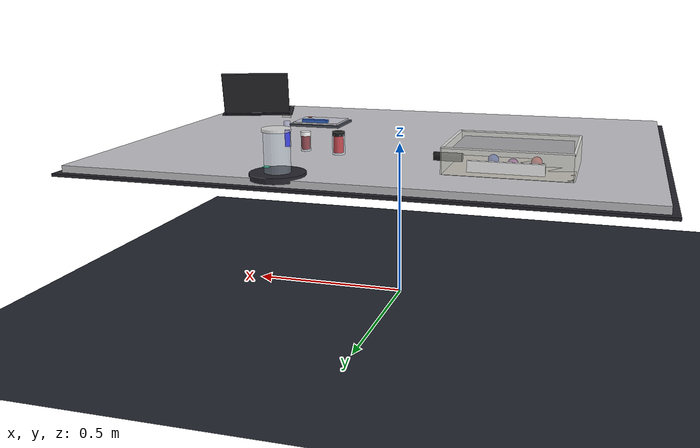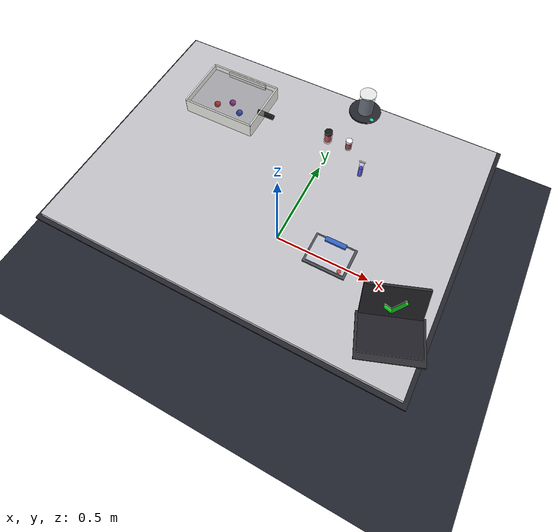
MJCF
<mujoco model="empty_scene">
    <compiler angle="radian" meshdir="assets" autolimits="true"/>
    <option timestep="0.001" gravity="0 0 -9.81" integrator="implicitfast"
            viscosity="0.1" iterations="80" ls_iterations="40" cone="pyramidal" density="1000"/>

    <visual>
        <quality shadowsize="4096"/>
        <headlight diffuse="0.7 0.7 0.7" ambient="0.25 0.25 0.25"/>
        <global azimuth="135" elevation="-25"/>
    </visual>

    <asset>
        <texture type="skybox" builtin="gradient" rgb1="0.25 0.35 0.6" rgb2="0 0 0.05" width="800" height="800"/>
        <texture type="2d" name="lab_floor_tex" builtin="checker" mark="edge"
                 rgb1="0.16 0.18 0.22" rgb2="0.10 0.11 0.14" markrgb="0.55 0.55 0.55" width="512" height="512"/>
        <texture type="2d" name="table_tex" builtin="flat" rgb1="0.78 0.78 0.8" width="256" height="256"/>
        <texture type="2d" name="matte_plastic" builtin="flat" rgb1="0.55 0.55 0.58" width="256" height="256"/>
        <!-- Screen result textures (generated at runtime if missing) -->

        <!-- Mesh for laptop screen (front face has UVs so the texture maps correctly) -->

        <material name="lab_floor" texture="lab_floor_tex" texrepeat="6 6" texuniform="true" reflectance="0.25"/>
        <material name="table_top_mat" texture="table_tex" shininess="0.35" reflectance="0.15"/>
        <material name="trim_dark" rgba="0.15 0.15 0.18 1" shininess="0.05"/>
        <material name="glass_mat" rgba="0.85 0.93 1 0.35" shininess="1.0" reflectance="0.4"/>
        <material name="bag_mat" rgba="0.94 0.94 0.9 0.65" shininess="0.15"/>
        <material name="metal_mat" rgba="0.55 0.55 0.58 1" shininess="0.9" reflectance="0.35"/>
        <material name="holder_mat" texture="matte_plastic" shininess="0.25" reflectance="0.1"/>
        <material name="screen_glow" rgba="0.2 0.4 0.8 0.9" emission="0.6" shininess="0.3"/>

        <!-- Material used for the geometry checkmark (bright, emissive green) -->
        <material name="check_mat" rgba="0.08 0.85 0.12 1" emission="2.0" shininess="0.2"/>
        <material name="laptop_shell" rgba="0.18 0.18 0.2 1" shininess="0.6"/>
        <material name="label_mat" rgba="1 1 1 0.95"/>
    </asset>

    <worldbody>
        <light name="key_light" pos="0.5 -0.5 2" dir="-0.2 0.2 -1" directional="true" castshadow="true" cutoff="60"/>
        <light name="fill_light" pos="-0.4 0.4 2.2" dir="0.2 -0.2 -1" directional="true" diffuse="0.4 0.4 0.5" specular="0.2 0.2 0.3"/>
        <geom name="lab_floor" type="plane" size="0 0 0.1" material="lab_floor" friction="1 0.1 0.01"/>
        <camera name="overview" mode="fixed" pos="1.2 -1.4 1.35" euler="0.4 0 0.8" fovy="50"/>

        <!-- Table and recessed bag slot -->
        <body name="table_top" pos="0 0 0.5">
            <geom name="table_surface" type="box" size="0.8 0.6 0.01" material="table_top_mat" friction="1.5 0.01 0.0001"/>
            <geom name="table_edge" type="box" size="0.82 0.62 0.004" pos="0 0 -0.014" material="trim_dark" contype="0" conaffinity="0"/>
            <body name="bag_table_slot" pos="-0.4 0.3 0">
                <geom name="slot_inner" type="box" pos="0 0 -0.006" size="0.22 0.18 0.006" rgba="0.23 0.23 0.23 1" contype="0" conaffinity="0"/>
                <geom name="slot_border" type="box" pos="0 0 -0.002" size="0.24 0.2 0.002" rgba="0.55 0.55 0.55 1" contype="0" conaffinity="0"/>
                <geom name="slot_open" type="box" pos="0 0 0.0005" size="0.205 0.165 0.0005" rgba="0.1 0.1 0.1 1" contype="0" conaffinity="0"/>
            </body>
        </body>

        <!-- Mixing station with beaker -->
        <body name="mix_station" pos="0.18 0.55 0.51">
            <geom name="mix_plate" type="cylinder" size="0.07 0.005" rgba="0.35 0.36 0.4 1" friction="1.2 0.01 0.0001"/>
            <geom name="mix_plate_trim" type="cylinder" size="0.075 0.008" rgba="0.15 0.15 0.18 1" contype="0" conaffinity="0"/>
            <geom name="mix_led" type="cylinder" pos="0.05 -0.04 0.01" size="0.01 0.001" rgba="0.2 0.8 0.6 1" contype="0" conaffinity="0"/>
            <body name="mix_beaker" pos="0 0 0.06">
                <geom name="mix_beaker_glass" type="cylinder" size="0.035 0.06" material="glass_mat" contype="0" conaffinity="0"/>
                <geom name="mix_beaker_fluid" type="cylinder" pos="0 0 -0.015" size="0.028 0.03" rgba="0.85 0.3 0.2 0.7" contype="0" conaffinity="0"/>
                <geom name="mix_beaker_lip" type="cylinder" pos="0 0 0.06" size="0.038 0.004" rgba="0.95 0.95 0.95 0.8" contype="0" conaffinity="0"/>
            </body>
        </body>

        <!-- Analysis pad / scale -->
        <body name="analysis_pad" pos="0.35 -0.22 0.51">
            <geom name="analysis_base" type="box" size="0.09 0.07 0.008" rgba="0.3 0.32 0.36 1" friction="1.3 0.01 0.0001"/>
            <geom name="analysis_plate" type="box" pos="0 0 0.01" size="0.08 0.06 0.004" rgba="0.78 0.78 0.82 1" contype="0" conaffinity="0"/>
            <geom name="analysis_display" type="box" pos="0.0 0.055 0.02" size="0.045 0.01 0.005" material="screen_glow" contype="0" conaffinity="0"/>
            <geom name="analysis_button" type="cylinder" pos="0.06 -0.05 0.012" size="0.008 0.003" rgba="0.85 0.3 0.2 1" contype="0" conaffinity="0"/>
        </body>

        <!-- Tedlar bag recess -->
        <body name="tedlar_bag_zone" pos="-0.4 0.3 0.49">
            <geom name="bag_base" type="box" pos="0 0 0.01" size="0.17 0.13 0.01" rgba="0.85 0.83 0.78 0.95" contype="0" conaffinity="0"/>
            <geom name="bag_back" type="box" pos="0 -0.13 0.045" size="0.17 0.004 0.045" material="bag_mat" contype="0" conaffinity="0"/>
            <geom name="bag_front" type="box" pos="0 0.13 0.045" size="0.17 0.004 0.045" material="bag_mat" contype="0" conaffinity="0"/>
            <geom name="bag_left" type="box" pos="-0.17 0 0.045" size="0.004 0.13 0.045" material="bag_mat" contype="0" conaffinity="0"/>
            <geom name="bag_right" type="box" pos="0.17 0 0.045" size="0.004 0.13 0.045" material="bag_mat" contype="0" conaffinity="0"/>
            <geom name="bag_inner_shadow" type="box" pos="0 0 0.045" size="0.155 0.115 0.035" rgba="0.2 0.2 0.2 0.15" contype="0" conaffinity="0"/>
            <geom name="bag_rim_front" type="box" pos="0 0.13 0.09" size="0.17 0.003 0.003" rgba="0.98 0.98 0.96 0.85" contype="0" conaffinity="0"/>
            <geom name="bag_rim_back" type="box" pos="0 -0.13 0.09" size="0.17 0.003 0.003" rgba="0.98 0.98 0.96 0.85" contype="0" conaffinity="0"/>
            <geom name="bag_rim_left" type="box" pos="-0.17 0 0.09" size="0.003 0.13 0.003" rgba="0.98 0.98 0.96 0.85" contype="0" conaffinity="0"/>
            <geom name="bag_rim_right" type="box" pos="0.17 0 0.09" size="0.003 0.13 0.003" rgba="0.98 0.98 0.96 0.85" contype="0" conaffinity="0"/>
            <geom name="bag_nozzle" type="cylinder" pos="0.18 0 0.04" size="0.012 0.04" euler="0 1.57 0" rgba="0.1 0.1 0.1 1" contype="0" conaffinity="0"/>
            <geom name="bag_label" type="box" pos="0 0.145 0.05" size="0.1 0.005 0.015" material="label_mat" contype="0" conaffinity="0"/>
            <!-- Individual bag slots for placed chemistry objects -->
            <body name="bag_slot_nitrogen" pos="-0.06 -0.04 0.03">
                <geom name="bag_slot_nitrogen_geom" type="sphere" size="0.015" rgba="0.8 0.2 0.2 0.9" contype="0" conaffinity="0"/>
            </body>
            <body name="bag_slot_chloroform" pos="0.06 -0.04 0.03">
                <geom name="bag_slot_chloroform_geom" type="sphere" size="0.015" rgba="0.2 0.3 0.8 0.9" contype="0" conaffinity="0"/>
            </body>
            <body name="bag_slot_toluene" pos="0.00 0.00 0.03">
                <geom name="bag_slot_toluene_geom" type="sphere" size="0.015" rgba="0.6 0.2 0.6 0.9" contype="0" conaffinity="0"/>
            </body>
        </body>

        <!-- Nitrogen bottle (red) -->
        <body name="nitrogen_tool" pos="0.1 0.3 0.55">
            <geom name="n_col" type="box" size="0.022 0.022 0.035" rgba="1 0 0 0" mass="0.05" friction="2 0.005 0.0001"/>
            <geom name="n_glass" type="cylinder" size="0.018 0.03" material="glass_mat" contype="0" conaffinity="0"/>
            <geom name="n_liq" type="cylinder" size="0.014 0.025" rgba="0.8 0 0 1" contype="0" conaffinity="0"/>
            <geom name="n_cap" type="cylinder" pos="0 0 0.03" size="0.018 0.006" rgba="0.1 0.1 0.1 1" contype="0" conaffinity="0"/>
            <freejoint/>
        </body>

        <!-- Chloroform syringe (blue) -->
        <body name="chloroform_syringe" pos="0.3 0.2 0.55">
            <geom name="c_col" type="box" size="0.018 0.018 0.045" rgba="0 0 1 0" mass="0.02" friction="2 0.005 0.0001"/>
            <geom name="c_vis_body" type="cylinder" size="0.01 0.04" rgba="0.8 0.8 1 0.5" contype="0" conaffinity="0"/>
            <geom name="c_vis_liq" type="cylinder" pos="0 0 -0.012" size="0.008 0.025" rgba="0 0 1 1" contype="0" conaffinity="0"/>
            <geom name="c_vis_plunge" type="box" pos="0 0 0.055" size="0.014 0.0025 0.0025" rgba="1 1 1 1" contype="0" conaffinity="0"/>
            <geom name="c_vis_needle" type="cylinder" pos="0 0 -0.055" size="0.0012 0.012" rgba="0.5 0.5 0.5 1" contype="0" conaffinity="0"/>
            <freejoint/>
        </body>

        <!-- Small toluene vial (dark red) -->
        <body name="toluene_syringe" pos="0.2 0.3 0.55">
            <geom name="t_col" type="box" size="0.018 0.018 0.03" rgba="0.5 0 0 0" mass="0.02" friction="2 0.005 0.0001"/>
            <geom name="t_vis" type="cylinder" size="0.014 0.025" material="glass_mat" contype="0" conaffinity="0"/>
            <geom name="t_liq" type="cylinder" size="0.012 0.02" rgba="0.5 0 0 1" contype="0" conaffinity="0"/>
            <geom name="t_cap" type="cylinder" pos="0 0 0.025" size="0.015 0.006" rgba="1 1 1 1" contype="0" conaffinity="0"/>
            <freejoint/>
        </body>

        <!-- Laptop workstation for solution readout -->
        <body name="lab_laptop" pos="0.68 -0.42 0.51" euler="0 0 0.35">
            <geom name="laptop_base" type="box" size="0.13 0.09 0.006" material="laptop_shell" friction="1 0.005 0.0001"/>
            <geom name="laptop_keyboard" type="box" pos="0 0.015 0.008" size="0.12 0.08 0.002" rgba="0.13 0.13 0.16 1" contype="0" conaffinity="0"/>
            <geom name="laptop_hinge" type="capsule" pos="0 0.09 0.012" size="0.004 0.06" euler="0 1.57 0" material="metal_mat" contype="0" conaffinity="0"/>
            <body name="laptop_screen_body" pos="0 0.11 0.08" euler="-0.32 0 0">
                <geom name="laptop_screen_frame" type="box" size="0.12 0.006 0.085" material="laptop_shell" contype="0" conaffinity="0"/>

                 <!-- The dark screen background -->
                <geom name="lab_laptop_screen" type="box" pos="0 0.001 0" size="0.108 0.001 0.075" rgba="0.05 0.08 0.12 1" material="screen_glow" contype="0" conaffinity="0"/>

                 <!-- Move check geoms further toward the viewer (negative local Y) so they render in front -->
                 <geom name="check_short" type="capsule" fromto="-0.03 -0.01 -0.01 -0.005 -0.01 -0.03" size="0.006" contype="0" conaffinity="0"/>
                 <geom name="check_long" type="capsule" fromto="-0.005 -0.01 -0.03 0.04 -0.01 0.02" size="0.006" contype="0" conaffinity="0"/>
                 <!-- Visible geoms: further forward and using check_mat for immediate visibility -->
                 <geom name="check_short_vis" type="capsule" fromto="-0.03 -0.02 -0.01 -0.005 -0.02 -0.03" size="0.007" contype="0" conaffinity="0" material="check_mat"/>
                 <geom name="check_long_vis" type="capsule" fromto="-0.005 -0.02 -0.03 0.04 -0.02 0.02" size="0.007" contype="0" conaffinity="0" material="check_mat"/>
                 <!-- Extra guaranteed-visible plane slightly in front of the screen surface -->

                </body> <!-- close laptop_screen_body -->
            </body> <!-- close lab_laptop -->
    </worldbody>

</mujoco>
